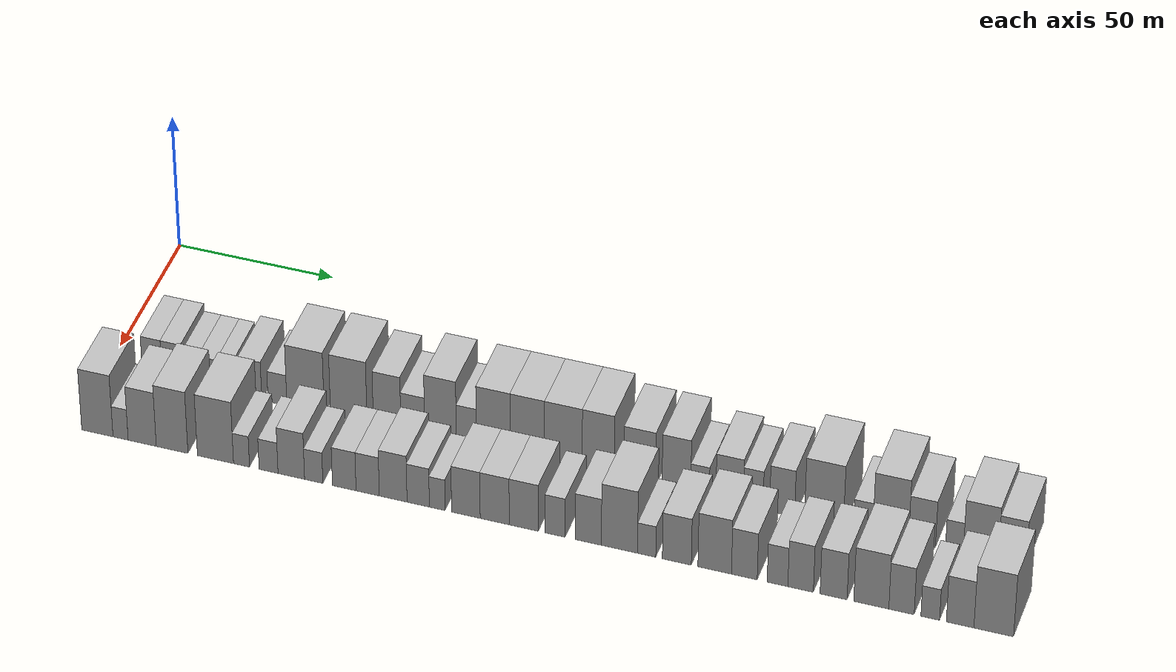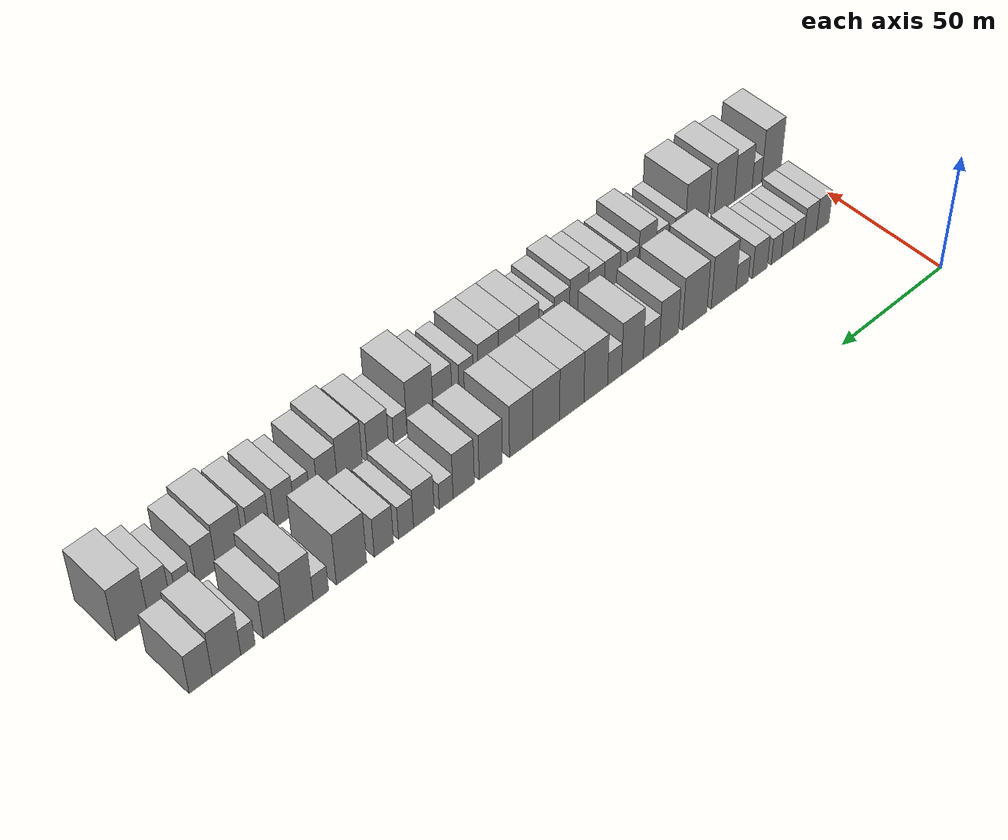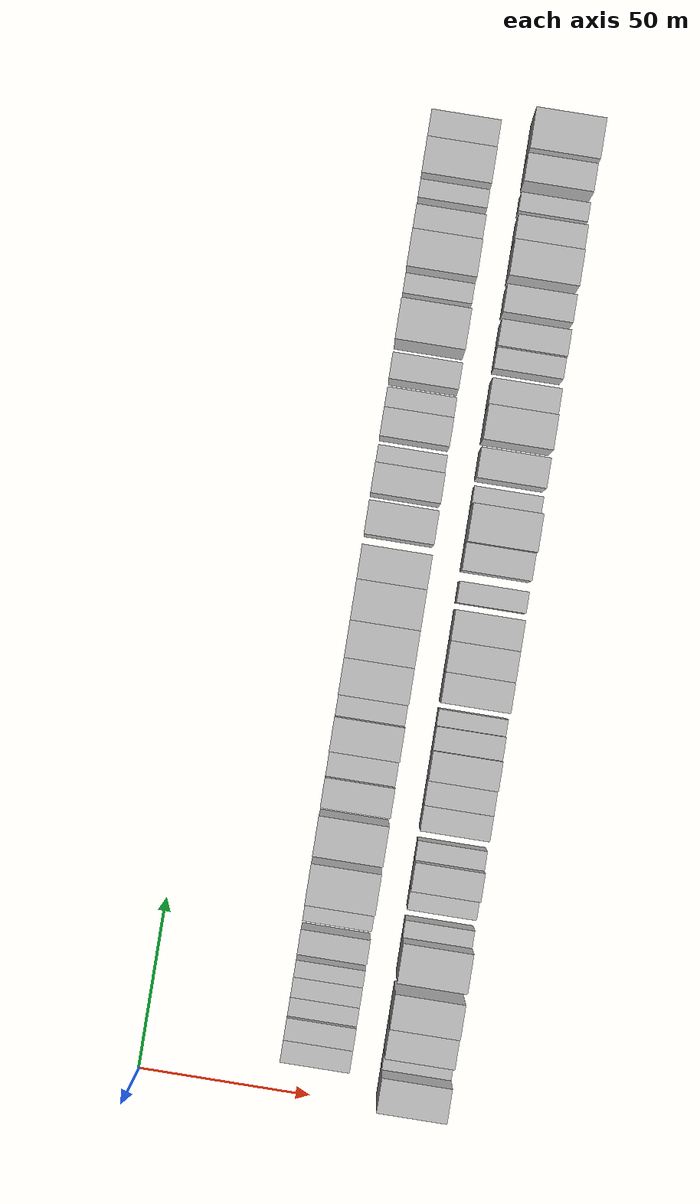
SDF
<sdf version="1.6">
 <world name="default">
  <model name="building_32">
   <static>1</static>
   <pose>50.0000 14.0946 0 0.000000 0.000000 0.000000</pose>
   <link name="link">
    <pose>0 0 7.50 0 0 0</pose>
    <collision name="collision"><geometry><box><size>20.0000 6.3376 15.0000</size></box></geometry></collision>
    <visual name="visual">
     <cast_shadows>0</cast_shadows>
     <geometry><box><size>20.0000 6.3376 15.0000</size></box></geometry>
     <material>
      <script>
       <uri>model://HANNAS_wall/materials/scripts</uri>
       <uri>model://HANNAS_wall/materials/textures</uri>
       <name>vrc/HANNAS_wall</name>
      </script>
     </material>
    </visual>
   </link>
  </model>
  <model name="building_33">
   <static>1</static>
   <pose>50.0000 20.4826 0 0.000000 0.000000 0.000000</pose>
   <link name="link">
    <pose>0 0 7.50 0 0 0</pose>
    <collision name="collision"><geometry><box><size>20.0000 6.4384 15.0000</size></box></geometry></collision>
    <visual name="visual">
     <cast_shadows>0</cast_shadows>
     <geometry><box><size>20.0000 6.4384 15.0000</size></box></geometry>
     <material>
      <script>
       <uri>model://HANNAS_wall/materials/scripts</uri>
       <uri>model://HANNAS_wall/materials/textures</uri>
       <name>vrc/HANNAS_wall</name>
      </script>
     </material>
    </visual>
   </link>
  </model>
  <model name="building_34">
   <static>1</static>
   <pose>50.0000 26.3966 0 0.000000 0.000000 0.000000</pose>
   <link name="link">
    <pose>0 0 6.00 0 0 0</pose>
    <collision name="collision"><geometry><box><size>20.0000 5.3897 12.0000</size></box></geometry></collision>
    <visual name="visual">
     <cast_shadows>0</cast_shadows>
     <geometry><box><size>20.0000 5.3897 12.0000</size></box></geometry>
     <material>
      <script>
       <uri>model://HANNAS_wall/materials/scripts</uri>
       <uri>model://HANNAS_wall/materials/textures</uri>
       <name>vrc/HANNAS_wall</name>
      </script>
     </material>
    </visual>
   </link>
  </model>
  <model name="building_35">
   <static>1</static>
   <pose>50.0000 32.0013 0 0.000000 0.000000 0.000000</pose>
   <link name="link">
    <pose>0 0 6.00 0 0 0</pose>
    <collision name="collision"><geometry><box><size>20.0000 5.8198 12.0000</size></box></geometry></collision>
    <visual name="visual">
     <cast_shadows>0</cast_shadows>
     <geometry><box><size>20.0000 5.8198 12.0000</size></box></geometry>
     <material>
      <script>
       <uri>model://HANNAS_wall/materials/scripts</uri>
       <uri>model://HANNAS_wall/materials/textures</uri>
       <name>vrc/HANNAS_wall</name>
      </script>
     </material>
    </visual>
   </link>
  </model>
  <model name="building_36">
   <static>1</static>
   <pose>50.0000 37.3759 0 0.000000 0.000000 0.000000</pose>
   <link name="link">
    <pose>0 0 6.00 0 0 0</pose>
    <collision name="collision"><geometry><box><size>20.0000 4.9294 12.0000</size></box></geometry></collision>
    <visual name="visual">
     <cast_shadows>0</cast_shadows>
     <geometry><box><size>20.0000 4.9294 12.0000</size></box></geometry>
     <material>
      <script>
       <uri>model://HANNAS_wall/materials/scripts</uri>
       <uri>model://HANNAS_wall/materials/textures</uri>
       <name>vrc/HANNAS_wall</name>
      </script>
     </material>
    </visual>
   </link>
  </model>
  <model name="building_37">
   <static>1</static>
   <pose>50.0000 45.4599 0 0.000000 0.000000 0.000000</pose>
   <link name="link">
    <pose>0 0 7.50 0 0 0</pose>
    <collision name="collision"><geometry><box><size>20.0000 7.2387 15.0000</size></box></geometry></collision>
    <visual name="visual">
     <cast_shadows>0</cast_shadows>
     <geometry><box><size>20.0000 7.2387 15.0000</size></box></geometry>
     <material>
      <script>
       <uri>model://HANNAS_wall/materials/scripts</uri>
       <uri>model://HANNAS_wall/materials/textures</uri>
       <name>vrc/HANNAS_wall</name>
      </script>
     </material>
    </visual>
   </link>
  </model>
  <model name="building_38">
   <static>1</static>
   <pose>50.0000 54.0677 0 0.000000 0.000000 0.000000</pose>
   <link name="link">
    <pose>0 0 6.00 0 0 0</pose>
    <collision name="collision"><geometry><box><size>20.0000 5.9769 12.0000</size></box></geometry></collision>
    <visual name="visual">
     <cast_shadows>0</cast_shadows>
     <geometry><box><size>20.0000 5.9769 12.0000</size></box></geometry>
     <material>
      <script>
       <uri>model://HANNAS_wall/materials/scripts</uri>
       <uri>model://HANNAS_wall/materials/textures</uri>
       <name>vrc/HANNAS_wall</name>
      </script>
     </material>
    </visual>
   </link>
  </model>
  <model name="building_39">
   <static>1</static>
   <pose>50.0000 62.9731 0 0.000000 0.000000 0.000000</pose>
   <link name="link">
    <pose>0 0 12.00 0 0 0</pose>
    <collision name="collision"><geometry><box><size>20.0000 11.8338 24.0000</size></box></geometry></collision>
    <visual name="visual">
     <cast_shadows>0</cast_shadows>
     <geometry><box><size>20.0000 11.8338 24.0000</size></box></geometry>
     <material>
      <script>
       <uri>model://HANNAS_wall/materials/scripts</uri>
       <uri>model://HANNAS_wall/materials/textures</uri>
       <name>vrc/HANNAS_wall</name>
      </script>
     </material>
    </visual>
   </link>
  </model>
  <model name="building_40">
   <static>1</static>
   <pose>50.0000 76.6518 0 0.000000 0.000000 0.000000</pose>
   <link name="link">
    <pose>0 0 12.00 0 0 0</pose>
    <collision name="collision"><geometry><box><size>20.0000 11.5236 24.0000</size></box></geometry></collision>
    <visual name="visual">
     <cast_shadows>0</cast_shadows>
     <geometry><box><size>20.0000 11.5236 24.0000</size></box></geometry>
     <material>
      <script>
       <uri>model://HANNAS_wall/materials/scripts</uri>
       <uri>model://HANNAS_wall/materials/textures</uri>
       <name>vrc/HANNAS_wall</name>
      </script>
     </material>
    </visual>
   </link>
  </model>
  <model name="building_41">
   <static>1</static>
   <pose>50.0000 88.7374 0 0.000000 0.000000 0.000000</pose>
   <link name="link">
    <pose>0 0 10.50 0 0 0</pose>
    <collision name="collision"><geometry><box><size>20.0000 8.6478 21.0000</size></box></geometry></collision>
    <visual name="visual">
     <cast_shadows>0</cast_shadows>
     <geometry><box><size>20.0000 8.6478 21.0000</size></box></geometry>
     <material>
      <script>
       <uri>model://HANNAS_wall/materials/scripts</uri>
       <uri>model://HANNAS_wall/materials/textures</uri>
       <name>vrc/HANNAS_wall</name>
      </script>
     </material>
    </visual>
   </link>
  </model>
  <model name="building_42">
   <static>1</static>
   <pose>50.0000 96.8097 0 0.000000 0.000000 0.000000</pose>
   <link name="link">
    <pose>0 0 7.50 0 0 0</pose>
    <collision name="collision"><geometry><box><size>20.0000 7.4968 15.0000</size></box></geometry></collision>
    <visual name="visual">
     <cast_shadows>0</cast_shadows>
     <geometry><box><size>20.0000 7.4968 15.0000</size></box></geometry>
     <material>
      <script>
       <uri>model://HANNAS_wall/materials/scripts</uri>
       <uri>model://HANNAS_wall/materials/textures</uri>
       <name>vrc/HANNAS_wall</name>
      </script>
     </material>
    </visual>
   </link>
  </model>
  <model name="building_43">
   <static>1</static>
   <pose>50.0000 105.5045 0 0.000000 0.000000 0.000000</pose>
   <link name="link">
    <pose>0 0 12.00 0 0 0</pose>
    <collision name="collision"><geometry><box><size>20.0000 9.8928 24.0000</size></box></geometry></collision>
    <visual name="visual">
     <cast_shadows>0</cast_shadows>
     <geometry><box><size>20.0000 9.8928 24.0000</size></box></geometry>
     <material>
      <script>
       <uri>model://HANNAS_wall/materials/scripts</uri>
       <uri>model://HANNAS_wall/materials/textures</uri>
       <name>vrc/HANNAS_wall</name>
      </script>
     </material>
    </visual>
   </link>
  </model>
  <model name="building_44">
   <static>1</static>
   <pose>50.0000 113.5807 0 0.000000 0.000000 0.000000</pose>
   <link name="link">
    <pose>0 0 7.50 0 0 0</pose>
    <collision name="collision"><geometry><box><size>20.0000 6.2596 15.0000</size></box></geometry></collision>
    <visual name="visual">
     <cast_shadows>0</cast_shadows>
     <geometry><box><size>20.0000 6.2596 15.0000</size></box></geometry>
     <material>
      <script>
       <uri>model://HANNAS_wall/materials/scripts</uri>
       <uri>model://HANNAS_wall/materials/textures</uri>
       <name>vrc/HANNAS_wall</name>
      </script>
     </material>
    </visual>
   </link>
  </model>
  <model name="building_45">
   <static>1</static>
   <pose>50.0000 121.9848 0 0.000000 0.000000 0.000000</pose>
   <link name="link">
    <pose>0 0 12.00 0 0 0</pose>
    <collision name="collision"><geometry><box><size>20.0000 10.5485 24.0000</size></box></geometry></collision>
    <visual name="visual">
     <cast_shadows>0</cast_shadows>
     <geometry><box><size>20.0000 10.5485 24.0000</size></box></geometry>
     <material>
      <script>
       <uri>model://HANNAS_wall/materials/scripts</uri>
       <uri>model://HANNAS_wall/materials/textures</uri>
       <name>vrc/HANNAS_wall</name>
      </script>
     </material>
    </visual>
   </link>
  </model>
  <model name="building_46">
   <static>1</static>
   <pose>50.0000 132.5934 0 0.000000 0.000000 0.000000</pose>
   <link name="link">
    <pose>0 0 12.00 0 0 0</pose>
    <collision name="collision"><geometry><box><size>20.0000 10.6686 24.0000</size></box></geometry></collision>
    <visual name="visual">
     <cast_shadows>0</cast_shadows>
     <geometry><box><size>20.0000 10.6686 24.0000</size></box></geometry>
     <material>
      <script>
       <uri>model://HANNAS_wall/materials/scripts</uri>
       <uri>model://HANNAS_wall/materials/textures</uri>
       <name>vrc/HANNAS_wall</name>
      </script>
     </material>
    </visual>
   </link>
  </model>
  <model name="building_47">
   <static>1</static>
   <pose>50.0000 143.7579 0 0.000000 0.000000 0.000000</pose>
   <link name="link">
    <pose>0 0 12.00 0 0 0</pose>
    <collision name="collision"><geometry><box><size>20.0000 11.6604 24.0000</size></box></geometry></collision>
    <visual name="visual">
     <cast_shadows>0</cast_shadows>
     <geometry><box><size>20.0000 11.6604 24.0000</size></box></geometry>
     <material>
      <script>
       <uri>model://HANNAS_wall/materials/scripts</uri>
       <uri>model://HANNAS_wall/materials/textures</uri>
       <name>vrc/HANNAS_wall</name>
      </script>
     </material>
    </visual>
   </link>
  </model>
  <model name="building_48">
   <static>1</static>
   <pose>50.0000 154.5104 0 0.000000 0.000000 0.000000</pose>
   <link name="link">
    <pose>0 0 12.00 0 0 0</pose>
    <collision name="collision"><geometry><box><size>20.0000 9.8446 24.0000</size></box></geometry></collision>
    <visual name="visual">
     <cast_shadows>0</cast_shadows>
     <geometry><box><size>20.0000 9.8446 24.0000</size></box></geometry>
     <material>
      <script>
       <uri>model://HANNAS_wall/materials/scripts</uri>
       <uri>model://HANNAS_wall/materials/textures</uri>
       <name>vrc/HANNAS_wall</name>
      </script>
     </material>
    </visual>
   </link>
  </model>
  <model name="building_49">
   <static>1</static>
   <pose>50.0000 167.3071 0 0.000000 0.000000 0.000000</pose>
   <link name="link">
    <pose>0 0 10.50 0 0 0</pose>
    <collision name="collision"><geometry><box><size>20.0000 9.7488 21.0000</size></box></geometry></collision>
    <visual name="visual">
     <cast_shadows>0</cast_shadows>
     <geometry><box><size>20.0000 9.7488 21.0000</size></box></geometry>
     <material>
      <script>
       <uri>model://HANNAS_wall/materials/scripts</uri>
       <uri>model://HANNAS_wall/materials/textures</uri>
       <name>vrc/HANNAS_wall</name>
      </script>
     </material>
    </visual>
   </link>
  </model>
  <model name="building_50">
   <static>1</static>
   <pose>50.0000 178.5694 0 0.000000 0.000000 0.000000</pose>
   <link name="link">
    <pose>0 0 10.50 0 0 0</pose>
    <collision name="collision"><geometry><box><size>20.0000 8.7759 21.0000</size></box></geometry></collision>
    <visual name="visual">
     <cast_shadows>0</cast_shadows>
     <geometry><box><size>20.0000 8.7759 21.0000</size></box></geometry>
     <material>
      <script>
       <uri>model://HANNAS_wall/materials/scripts</uri>
       <uri>model://HANNAS_wall/materials/textures</uri>
       <name>vrc/HANNAS_wall</name>
      </script>
     </material>
    </visual>
   </link>
  </model>
  <model name="building_51">
   <static>1</static>
   <pose>50.0000 185.8129 0 0.000000 0.000000 0.000000</pose>
   <link name="link">
    <pose>0 0 6.00 0 0 0</pose>
    <collision name="collision"><geometry><box><size>20.0000 5.7110 12.0000</size></box></geometry></collision>
    <visual name="visual">
     <cast_shadows>0</cast_shadows>
     <geometry><box><size>20.0000 5.7110 12.0000</size></box></geometry>
     <material>
      <script>
       <uri>model://HANNAS_wall/materials/scripts</uri>
       <uri>model://HANNAS_wall/materials/textures</uri>
       <name>vrc/HANNAS_wall</name>
      </script>
     </material>
    </visual>
   </link>
  </model>
  <model name="building_52">
   <static>1</static>
   <pose>50.0000 194.8504 0 0.000000 0.000000 0.000000</pose>
   <link name="link">
    <pose>0 0 9.00 0 0 0</pose>
    <collision name="collision"><geometry><box><size>20.0000 8.3639 18.0000</size></box></geometry></collision>
    <visual name="visual">
     <cast_shadows>0</cast_shadows>
     <geometry><box><size>20.0000 8.3639 18.0000</size></box></geometry>
     <material>
      <script>
       <uri>model://HANNAS_wall/materials/scripts</uri>
       <uri>model://HANNAS_wall/materials/textures</uri>
       <name>vrc/HANNAS_wall</name>
      </script>
     </material>
    </visual>
   </link>
  </model>
  <model name="building_53">
   <static>1</static>
   <pose>50.0000 202.0551 0 0.000000 0.000000 0.000000</pose>
   <link name="link">
    <pose>0 0 7.50 0 0 0</pose>
    <collision name="collision"><geometry><box><size>20.0000 6.0456 15.0000</size></box></geometry></collision>
    <visual name="visual">
     <cast_shadows>0</cast_shadows>
     <geometry><box><size>20.0000 6.0456 15.0000</size></box></geometry>
     <material>
      <script>
       <uri>model://HANNAS_wall/materials/scripts</uri>
       <uri>model://HANNAS_wall/materials/textures</uri>
       <name>vrc/HANNAS_wall</name>
      </script>
     </material>
    </visual>
   </link>
  </model>
  <model name="building_54">
   <static>1</static>
   <pose>50.0000 210.8875 0 0.000000 0.000000 0.000000</pose>
   <link name="link">
    <pose>0 0 9.00 0 0 0</pose>
    <collision name="collision"><geometry><box><size>20.0000 7.6192 18.0000</size></box></geometry></collision>
    <visual name="visual">
     <cast_shadows>0</cast_shadows>
     <geometry><box><size>20.0000 7.6192 18.0000</size></box></geometry>
     <material>
      <script>
       <uri>model://HANNAS_wall/materials/scripts</uri>
       <uri>model://HANNAS_wall/materials/textures</uri>
       <name>vrc/HANNAS_wall</name>
      </script>
     </material>
    </visual>
   </link>
  </model>
  <model name="building_55">
   <static>1</static>
   <pose>50.0000 223.5982 0 0.000000 0.000000 0.000000</pose>
   <link name="link">
    <pose>0 0 12.00 0 0 0</pose>
    <collision name="collision"><geometry><box><size>20.0000 11.8020 24.0000</size></box></geometry></collision>
    <visual name="visual">
     <cast_shadows>0</cast_shadows>
     <geometry><box><size>20.0000 11.8020 24.0000</size></box></geometry>
     <material>
      <script>
       <uri>model://HANNAS_wall/materials/scripts</uri>
       <uri>model://HANNAS_wall/materials/textures</uri>
       <name>vrc/HANNAS_wall</name>
      </script>
     </material>
    </visual>
   </link>
  </model>
  <model name="building_56">
   <static>1</static>
   <pose>50.0000 235.4313 0 0.000000 0.000000 0.000000</pose>
   <link name="link">
    <pose>0 0 6.00 0 0 0</pose>
    <collision name="collision"><geometry><box><size>20.0000 5.8642 12.0000</size></box></geometry></collision>
    <visual name="visual">
     <cast_shadows>0</cast_shadows>
     <geometry><box><size>20.0000 5.8642 12.0000</size></box></geometry>
     <material>
      <script>
       <uri>model://HANNAS_wall/materials/scripts</uri>
       <uri>model://HANNAS_wall/materials/textures</uri>
       <name>vrc/HANNAS_wall</name>
      </script>
     </material>
    </visual>
   </link>
  </model>
  <model name="building_57">
   <static>1</static>
   <pose>50.0000 243.7569 0 0.000000 0.000000 0.000000</pose>
   <link name="link">
    <pose>0 0 12.00 0 0 0</pose>
    <collision name="collision"><geometry><box><size>20.0000 10.7869 24.0000</size></box></geometry></collision>
    <visual name="visual">
     <cast_shadows>0</cast_shadows>
     <geometry><box><size>20.0000 10.7869 24.0000</size></box></geometry>
     <material>
      <script>
       <uri>model://HANNAS_wall/materials/scripts</uri>
       <uri>model://HANNAS_wall/materials/textures</uri>
       <name>vrc/HANNAS_wall</name>
      </script>
     </material>
    </visual>
   </link>
  </model>
  <model name="building_58">
   <static>1</static>
   <pose>50.0000 253.1843 0 0.000000 0.000000 0.000000</pose>
   <link name="link">
    <pose>0 0 9.00 0 0 0</pose>
    <collision name="collision"><geometry><box><size>20.0000 8.0679 18.0000</size></box></geometry></collision>
    <visual name="visual">
     <cast_shadows>0</cast_shadows>
     <geometry><box><size>20.0000 8.0679 18.0000</size></box></geometry>
     <material>
      <script>
       <uri>model://HANNAS_wall/materials/scripts</uri>
       <uri>model://HANNAS_wall/materials/textures</uri>
       <name>vrc/HANNAS_wall</name>
      </script>
     </material>
    </visual>
   </link>
  </model>
  <model name="building_59">
   <static>1</static>
   <pose>50.0000 262.8933 0 0.000000 0.000000 0.000000</pose>
   <link name="link">
    <pose>0 0 6.00 0 0 0</pose>
    <collision name="collision"><geometry><box><size>20.0000 5.3500 12.0000</size></box></geometry></collision>
    <visual name="visual">
     <cast_shadows>0</cast_shadows>
     <geometry><box><size>20.0000 5.3500 12.0000</size></box></geometry>
     <material>
      <script>
       <uri>model://HANNAS_wall/materials/scripts</uri>
       <uri>model://HANNAS_wall/materials/textures</uri>
       <name>vrc/HANNAS_wall</name>
      </script>
     </material>
    </visual>
   </link>
  </model>
  <model name="building_60">
   <static>1</static>
   <pose>50.0000 270.7941 0 0.000000 0.000000 0.000000</pose>
   <link name="link">
    <pose>0 0 10.50 0 0 0</pose>
    <collision name="collision"><geometry><box><size>20.0000 10.4516 21.0000</size></box></geometry></collision>
    <visual name="visual">
     <cast_shadows>0</cast_shadows>
     <geometry><box><size>20.0000 10.4516 21.0000</size></box></geometry>
     <material>
      <script>
       <uri>model://HANNAS_wall/materials/scripts</uri>
       <uri>model://HANNAS_wall/materials/textures</uri>
       <name>vrc/HANNAS_wall</name>
      </script>
     </material>
    </visual>
   </link>
  </model>
  <model name="building_61">
   <static>1</static>
   <pose>50.0000 280.1998 0 0.000000 0.000000 0.000000</pose>
   <link name="link">
    <pose>0 0 9.00 0 0 0</pose>
    <collision name="collision"><geometry><box><size>20.0000 8.3598 18.0000</size></box></geometry></collision>
    <visual name="visual">
     <cast_shadows>0</cast_shadows>
     <geometry><box><size>20.0000 8.3598 18.0000</size></box></geometry>
     <material>
      <script>
       <uri>model://HANNAS_wall/materials/scripts</uri>
       <uri>model://HANNAS_wall/materials/textures</uri>
       <name>vrc/HANNAS_wall</name>
      </script>
     </material>
    </visual>
   </link>
  </model>
  <model name="building_93">
   <static>1</static>
   <pose>79.0000 7.8602 0 0.000000 0.000000 0.000000</pose>
   <link name="link">
    <pose>0 0 12.00 0 0 0</pose>
    <collision name="collision"><geometry><box><size>20.0000 9.9301 24.0000</size></box></geometry></collision>
    <visual name="visual">
     <cast_shadows>0</cast_shadows>
     <geometry><box><size>20.0000 9.9301 24.0000</size></box></geometry>
     <material>
      <script>
       <uri>model://HANNAS_wall/materials/scripts</uri>
       <uri>model://HANNAS_wall/materials/textures</uri>
       <name>vrc/HANNAS_wall</name>
      </script>
     </material>
    </visual>
   </link>
  </model>
  <model name="building_94">
   <static>1</static>
   <pose>79.0000 15.2295 0 0.000000 0.000000 0.000000</pose>
   <link name="link">
    <pose>0 0 6.00 0 0 0</pose>
    <collision name="collision"><geometry><box><size>20.0000 4.8085 12.0000</size></box></geometry></collision>
    <visual name="visual">
     <cast_shadows>0</cast_shadows>
     <geometry><box><size>20.0000 4.8085 12.0000</size></box></geometry>
     <material>
      <script>
       <uri>model://HANNAS_wall/materials/scripts</uri>
       <uri>model://HANNAS_wall/materials/textures</uri>
       <name>vrc/HANNAS_wall</name>
      </script>
     </material>
    </visual>
   </link>
  </model>
  <model name="building_95">
   <static>1</static>
   <pose>79.0000 22.0915 0 0.000000 0.000000 0.000000</pose>
   <link name="link">
    <pose>0 0 10.50 0 0 0</pose>
    <collision name="collision"><geometry><box><size>20.0000 8.9153 21.0000</size></box></geometry></collision>
    <visual name="visual">
     <cast_shadows>0</cast_shadows>
     <geometry><box><size>20.0000 8.9153 21.0000</size></box></geometry>
     <material>
      <script>
       <uri>model://HANNAS_wall/materials/scripts</uri>
       <uri>model://HANNAS_wall/materials/textures</uri>
       <name>vrc/HANNAS_wall</name>
      </script>
     </material>
    </visual>
   </link>
  </model>
  <model name="building_96">
   <static>1</static>
   <pose>79.0000 31.5507 0 0.000000 0.000000 0.000000</pose>
   <link name="link">
    <pose>0 0 12.00 0 0 0</pose>
    <collision name="collision"><geometry><box><size>20.0000 10.0031 24.0000</size></box></geometry></collision>
    <visual name="visual">
     <cast_shadows>0</cast_shadows>
     <geometry><box><size>20.0000 10.0031 24.0000</size></box></geometry>
     <material>
      <script>
       <uri>model://HANNAS_wall/materials/scripts</uri>
       <uri>model://HANNAS_wall/materials/textures</uri>
       <name>vrc/HANNAS_wall</name>
      </script>
     </material>
    </visual>
   </link>
  </model>
  <model name="building_97">
   <static>1</static>
   <pose>79.0000 45.2328 0 0.000000 0.000000 0.000000</pose>
   <link name="link">
    <pose>0 0 12.00 0 0 0</pose>
    <collision name="collision"><geometry><box><size>20.0000 11.3610 24.0000</size></box></geometry></collision>
    <visual name="visual">
     <cast_shadows>0</cast_shadows>
     <geometry><box><size>20.0000 11.3610 24.0000</size></box></geometry>
     <material>
      <script>
       <uri>model://HANNAS_wall/materials/scripts</uri>
       <uri>model://HANNAS_wall/materials/textures</uri>
       <name>vrc/HANNAS_wall</name>
      </script>
     </material>
    </visual>
   </link>
  </model>
  <model name="building_98">
   <static>1</static>
   <pose>79.0000 53.4311 0 0.000000 0.000000 0.000000</pose>
   <link name="link">
    <pose>0 0 6.00 0 0 0</pose>
    <collision name="collision"><geometry><box><size>20.0000 5.0357 12.0000</size></box></geometry></collision>
    <visual name="visual">
     <cast_shadows>0</cast_shadows>
     <geometry><box><size>20.0000 5.0357 12.0000</size></box></geometry>
     <material>
      <script>
       <uri>model://HANNAS_wall/materials/scripts</uri>
       <uri>model://HANNAS_wall/materials/textures</uri>
       <name>vrc/HANNAS_wall</name>
      </script>
     </material>
    </visual>
   </link>
  </model>
  <model name="building_99">
   <static>1</static>
   <pose>79.0000 61.9198 0 0.000000 0.000000 0.000000</pose>
   <link name="link">
    <pose>0 0 6.00 0 0 0</pose>
    <collision name="collision"><geometry><box><size>20.0000 5.9418 12.0000</size></box></geometry></collision>
    <visual name="visual">
     <cast_shadows>0</cast_shadows>
     <geometry><box><size>20.0000 5.9418 12.0000</size></box></geometry>
     <material>
      <script>
       <uri>model://HANNAS_wall/materials/scripts</uri>
       <uri>model://HANNAS_wall/materials/textures</uri>
       <name>vrc/HANNAS_wall</name>
      </script>
     </material>
    </visual>
   </link>
  </model>
  <model name="building_100">
   <static>1</static>
   <pose>79.0000 69.0466 0 0.000000 0.000000 0.000000</pose>
   <link name="link">
    <pose>0 0 9.00 0 0 0</pose>
    <collision name="collision"><geometry><box><size>20.0000 8.3119 18.0000</size></box></geometry></collision>
    <visual name="visual">
     <cast_shadows>0</cast_shadows>
     <geometry><box><size>20.0000 8.3119 18.0000</size></box></geometry>
     <material>
      <script>
       <uri>model://HANNAS_wall/materials/scripts</uri>
       <uri>model://HANNAS_wall/materials/textures</uri>
       <name>vrc/HANNAS_wall</name>
      </script>
     </material>
    </visual>
   </link>
  </model>
  <model name="building_101">
   <static>1</static>
   <pose>79.0000 76.0504 0 0.000000 0.000000 0.000000</pose>
   <link name="link">
    <pose>0 0 6.00 0 0 0</pose>
    <collision name="collision"><geometry><box><size>20.0000 5.6956 12.0000</size></box></geometry></collision>
    <visual name="visual">
     <cast_shadows>0</cast_shadows>
     <geometry><box><size>20.0000 5.6956 12.0000</size></box></geometry>
     <material>
      <script>
       <uri>model://HANNAS_wall/materials/scripts</uri>
       <uri>model://HANNAS_wall/materials/textures</uri>
       <name>vrc/HANNAS_wall</name>
      </script>
     </material>
    </visual>
   </link>
  </model>
  <model name="building_102">
   <static>1</static>
   <pose>79.0000 85.5739 0 0.000000 0.000000 0.000000</pose>
   <link name="link">
    <pose>0 0 7.50 0 0 0</pose>
    <collision name="collision"><geometry><box><size>20.0000 7.3515 15.0000</size></box></geometry></collision>
    <visual name="visual">
     <cast_shadows>0</cast_shadows>
     <geometry><box><size>20.0000 7.3515 15.0000</size></box></geometry>
     <material>
      <script>
       <uri>model://HANNAS_wall/materials/scripts</uri>
       <uri>model://HANNAS_wall/materials/textures</uri>
       <name>vrc/HANNAS_wall</name>
      </script>
     </material>
    </visual>
   </link>
  </model>
  <model name="building_103">
   <static>1</static>
   <pose>79.0000 92.8683 0 0.000000 0.000000 0.000000</pose>
   <link name="link">
    <pose>0 0 7.50 0 0 0</pose>
    <collision name="collision"><geometry><box><size>20.0000 7.2372 15.0000</size></box></geometry></collision>
    <visual name="visual">
     <cast_shadows>0</cast_shadows>
     <geometry><box><size>20.0000 7.2372 15.0000</size></box></geometry>
     <material>
      <script>
       <uri>model://HANNAS_wall/materials/scripts</uri>
       <uri>model://HANNAS_wall/materials/textures</uri>
       <name>vrc/HANNAS_wall</name>
      </script>
     </material>
    </visual>
   </link>
  </model>
  <model name="building_104">
   <static>1</static>
   <pose>79.0000 100.7884 0 0.000000 0.000000 0.000000</pose>
   <link name="link">
    <pose>0 0 9.00 0 0 0</pose>
    <collision name="collision"><geometry><box><size>20.0000 8.6030 18.0000</size></box></geometry></collision>
    <visual name="visual">
     <cast_shadows>0</cast_shadows>
     <geometry><box><size>20.0000 8.6030 18.0000</size></box></geometry>
     <material>
      <script>
       <uri>model://HANNAS_wall/materials/scripts</uri>
       <uri>model://HANNAS_wall/materials/textures</uri>
       <name>vrc/HANNAS_wall</name>
      </script>
     </material>
    </visual>
   </link>
  </model>
  <model name="building_105">
   <static>1</static>
   <pose>79.0000 108.5436 0 0.000000 0.000000 0.000000</pose>
   <link name="link">
    <pose>0 0 7.50 0 0 0</pose>
    <collision name="collision"><geometry><box><size>20.0000 6.9075 15.0000</size></box></geometry></collision>
    <visual name="visual">
     <cast_shadows>0</cast_shadows>
     <geometry><box><size>20.0000 6.9075 15.0000</size></box></geometry>
     <material>
      <script>
       <uri>model://HANNAS_wall/materials/scripts</uri>
       <uri>model://HANNAS_wall/materials/textures</uri>
       <name>vrc/HANNAS_wall</name>
      </script>
     </material>
    </visual>
   </link>
  </model>
  <model name="building_106">
   <static>1</static>
   <pose>79.0000 114.4298 0 0.000000 0.000000 0.000000</pose>
   <link name="link">
    <pose>0 0 6.00 0 0 0</pose>
    <collision name="collision"><geometry><box><size>20.0000 4.8649 12.0000</size></box></geometry></collision>
    <visual name="visual">
     <cast_shadows>0</cast_shadows>
     <geometry><box><size>20.0000 4.8649 12.0000</size></box></geometry>
     <material>
      <script>
       <uri>model://HANNAS_wall/materials/scripts</uri>
       <uri>model://HANNAS_wall/materials/textures</uri>
       <name>vrc/HANNAS_wall</name>
      </script>
     </material>
    </visual>
   </link>
  </model>
  <model name="building_107">
   <static>1</static>
   <pose>79.0000 123.2704 0 0.000000 0.000000 0.000000</pose>
   <link name="link">
    <pose>0 0 9.00 0 0 0</pose>
    <collision name="collision"><geometry><box><size>20.0000 8.8164 18.0000</size></box></geometry></collision>
    <visual name="visual">
     <cast_shadows>0</cast_shadows>
     <geometry><box><size>20.0000 8.8164 18.0000</size></box></geometry>
     <material>
      <script>
       <uri>model://HANNAS_wall/materials/scripts</uri>
       <uri>model://HANNAS_wall/materials/textures</uri>
       <name>vrc/HANNAS_wall</name>
      </script>
     </material>
    </visual>
   </link>
  </model>
  <model name="building_108">
   <static>1</static>
   <pose>79.0000 132.1520 0 0.000000 0.000000 0.000000</pose>
   <link name="link">
    <pose>0 0 9.00 0 0 0</pose>
    <collision name="collision"><geometry><box><size>20.0000 8.9468 18.0000</size></box></geometry></collision>
    <visual name="visual">
     <cast_shadows>0</cast_shadows>
     <geometry><box><size>20.0000 8.9468 18.0000</size></box></geometry>
     <material>
      <script>
       <uri>model://HANNAS_wall/materials/scripts</uri>
       <uri>model://HANNAS_wall/materials/textures</uri>
       <name>vrc/HANNAS_wall</name>
      </script>
     </material>
    </visual>
   </link>
  </model>
  <model name="building_109">
   <static>1</static>
   <pose>79.0000 141.0815 0 0.000000 0.000000 0.000000</pose>
   <link name="link">
    <pose>0 0 9.00 0 0 0</pose>
    <collision name="collision"><geometry><box><size>20.0000 8.9121 18.0000</size></box></geometry></collision>
    <visual name="visual">
     <cast_shadows>0</cast_shadows>
     <geometry><box><size>20.0000 8.9121 18.0000</size></box></geometry>
     <material>
      <script>
       <uri>model://HANNAS_wall/materials/scripts</uri>
       <uri>model://HANNAS_wall/materials/textures</uri>
       <name>vrc/HANNAS_wall</name>
      </script>
     </material>
    </visual>
   </link>
  </model>
  <model name="building_110">
   <static>1</static>
   <pose>79.0000 150.6457 0 0.000000 0.000000 0.000000</pose>
   <link name="link">
    <pose>0 0 7.50 0 0 0</pose>
    <collision name="collision"><geometry><box><size>20.0000 6.2163 15.0000</size></box></geometry></collision>
    <visual name="visual">
     <cast_shadows>0</cast_shadows>
     <geometry><box><size>20.0000 6.2163 15.0000</size></box></geometry>
     <material>
      <script>
       <uri>model://HANNAS_wall/materials/scripts</uri>
       <uri>model://HANNAS_wall/materials/textures</uri>
       <name>vrc/HANNAS_wall</name>
      </script>
     </material>
    </visual>
   </link>
  </model>
  <model name="building_111">
   <static>1</static>
   <pose>79.0000 160.7812 0 0.000000 0.000000 0.000000</pose>
   <link name="link">
    <pose>0 0 9.00 0 0 0</pose>
    <collision name="collision"><geometry><box><size>20.0000 8.0548 18.0000</size></box></geometry></collision>
    <visual name="visual">
     <cast_shadows>0</cast_shadows>
     <geometry><box><size>20.0000 8.0548 18.0000</size></box></geometry>
     <material>
      <script>
       <uri>model://HANNAS_wall/materials/scripts</uri>
       <uri>model://HANNAS_wall/materials/textures</uri>
       <name>vrc/HANNAS_wall</name>
      </script>
     </material>
    </visual>
   </link>
  </model>
  <model name="building_112">
   <static>1</static>
   <pose>79.0000 170.2984 0 0.000000 0.000000 0.000000</pose>
   <link name="link">
    <pose>0 0 12.00 0 0 0</pose>
    <collision name="collision"><geometry><box><size>20.0000 10.9796 24.0000</size></box></geometry></collision>
    <visual name="visual">
     <cast_shadows>0</cast_shadows>
     <geometry><box><size>20.0000 10.9796 24.0000</size></box></geometry>
     <material>
      <script>
       <uri>model://HANNAS_wall/materials/scripts</uri>
       <uri>model://HANNAS_wall/materials/textures</uri>
       <name>vrc/HANNAS_wall</name>
      </script>
     </material>
    </visual>
   </link>
  </model>
  <model name="building_113">
   <static>1</static>
   <pose>79.0000 178.5572 0 0.000000 0.000000 0.000000</pose>
   <link name="link">
    <pose>0 0 6.00 0 0 0</pose>
    <collision name="collision"><geometry><box><size>20.0000 5.5380 12.0000</size></box></geometry></collision>
    <visual name="visual">
     <cast_shadows>0</cast_shadows>
     <geometry><box><size>20.0000 5.5380 12.0000</size></box></geometry>
     <material>
      <script>
       <uri>model://HANNAS_wall/materials/scripts</uri>
       <uri>model://HANNAS_wall/materials/textures</uri>
       <name>vrc/HANNAS_wall</name>
      </script>
     </material>
    </visual>
   </link>
  </model>
  <model name="building_114">
   <static>1</static>
   <pose>79.0000 187.7063 0 0.000000 0.000000 0.000000</pose>
   <link name="link">
    <pose>0 0 9.00 0 0 0</pose>
    <collision name="collision"><geometry><box><size>20.0000 8.7600 18.0000</size></box></geometry></collision>
    <visual name="visual">
     <cast_shadows>0</cast_shadows>
     <geometry><box><size>20.0000 8.7600 18.0000</size></box></geometry>
     <material>
      <script>
       <uri>model://HANNAS_wall/materials/scripts</uri>
       <uri>model://HANNAS_wall/materials/textures</uri>
       <name>vrc/HANNAS_wall</name>
      </script>
     </material>
    </visual>
   </link>
  </model>
  <model name="building_115">
   <static>1</static>
   <pose>79.0000 199.1446 0 0.000000 0.000000 0.000000</pose>
   <link name="link">
    <pose>0 0 10.50 0 0 0</pose>
    <collision name="collision"><geometry><box><size>20.0000 10.1165 21.0000</size></box></geometry></collision>
    <visual name="visual">
     <cast_shadows>0</cast_shadows>
     <geometry><box><size>20.0000 10.1165 21.0000</size></box></geometry>
     <material>
      <script>
       <uri>model://HANNAS_wall/materials/scripts</uri>
       <uri>model://HANNAS_wall/materials/textures</uri>
       <name>vrc/HANNAS_wall</name>
      </script>
     </material>
    </visual>
   </link>
  </model>
  <model name="building_116">
   <static>1</static>
   <pose>79.0000 208.0820 0 0.000000 0.000000 0.000000</pose>
   <link name="link">
    <pose>0 0 9.00 0 0 0</pose>
    <collision name="collision"><geometry><box><size>20.0000 7.7583 18.0000</size></box></geometry></collision>
    <visual name="visual">
     <cast_shadows>0</cast_shadows>
     <geometry><box><size>20.0000 7.7583 18.0000</size></box></geometry>
     <material>
      <script>
       <uri>model://HANNAS_wall/materials/scripts</uri>
       <uri>model://HANNAS_wall/materials/textures</uri>
       <name>vrc/HANNAS_wall</name>
      </script>
     </material>
    </visual>
   </link>
  </model>
  <model name="building_117">
   <static>1</static>
   <pose>79.0000 218.0607 0 0.000000 0.000000 0.000000</pose>
   <link name="link">
    <pose>0 0 7.50 0 0 0</pose>
    <collision name="collision"><geometry><box><size>20.0000 6.1991 15.0000</size></box></geometry></collision>
    <visual name="visual">
     <cast_shadows>0</cast_shadows>
     <geometry><box><size>20.0000 6.1991 15.0000</size></box></geometry>
     <material>
      <script>
       <uri>model://HANNAS_wall/materials/scripts</uri>
       <uri>model://HANNAS_wall/materials/textures</uri>
       <name>vrc/HANNAS_wall</name>
      </script>
     </material>
    </visual>
   </link>
  </model>
  <model name="building_118">
   <static>1</static>
   <pose>79.0000 224.9850 0 0.000000 0.000000 0.000000</pose>
   <link name="link">
    <pose>0 0 9.00 0 0 0</pose>
    <collision name="collision"><geometry><box><size>20.0000 7.6495 18.0000</size></box></geometry></collision>
    <visual name="visual">
     <cast_shadows>0</cast_shadows>
     <geometry><box><size>20.0000 7.6495 18.0000</size></box></geometry>
     <material>
      <script>
       <uri>model://HANNAS_wall/materials/scripts</uri>
       <uri>model://HANNAS_wall/materials/textures</uri>
       <name>vrc/HANNAS_wall</name>
      </script>
     </material>
    </visual>
   </link>
  </model>
  <model name="building_119">
   <static>1</static>
   <pose>79.0000 234.8461 0 0.000000 0.000000 0.000000</pose>
   <link name="link">
    <pose>0 0 9.00 0 0 0</pose>
    <collision name="collision"><geometry><box><size>20.0000 8.0726 18.0000</size></box></geometry></collision>
    <visual name="visual">
     <cast_shadows>0</cast_shadows>
     <geometry><box><size>20.0000 8.0726 18.0000</size></box></geometry>
     <material>
      <script>
       <uri>model://HANNAS_wall/materials/scripts</uri>
       <uri>model://HANNAS_wall/materials/textures</uri>
       <name>vrc/HANNAS_wall</name>
      </script>
     </material>
    </visual>
   </link>
  </model>
  <model name="building_120">
   <static>1</static>
   <pose>79.0000 246.1042 0 0.000000 0.000000 0.000000</pose>
   <link name="link">
    <pose>0 0 10.50 0 0 0</pose>
    <collision name="collision"><geometry><box><size>20.0000 10.4437 21.0000</size></box></geometry></collision>
    <visual name="visual">
     <cast_shadows>0</cast_shadows>
     <geometry><box><size>20.0000 10.4437 21.0000</size></box></geometry>
     <material>
      <script>
       <uri>model://HANNAS_wall/materials/scripts</uri>
       <uri>model://HANNAS_wall/materials/textures</uri>
       <name>vrc/HANNAS_wall</name>
      </script>
     </material>
    </visual>
   </link>
  </model>
  <model name="building_121">
   <static>1</static>
   <pose>79.0000 255.0899 0 0.000000 0.000000 0.000000</pose>
   <link name="link">
    <pose>0 0 9.00 0 0 0</pose>
    <collision name="collision"><geometry><box><size>20.0000 7.5277 18.0000</size></box></geometry></collision>
    <visual name="visual">
     <cast_shadows>0</cast_shadows>
     <geometry><box><size>20.0000 7.5277 18.0000</size></box></geometry>
     <material>
      <script>
       <uri>model://HANNAS_wall/materials/scripts</uri>
       <uri>model://HANNAS_wall/materials/textures</uri>
       <name>vrc/HANNAS_wall</name>
      </script>
     </material>
    </visual>
   </link>
  </model>
  <model name="building_122">
   <static>1</static>
   <pose>79.0000 263.6205 0 0.000000 0.000000 0.000000</pose>
   <link name="link">
    <pose>0 0 6.00 0 0 0</pose>
    <collision name="collision"><geometry><box><size>20.0000 5.5334 12.0000</size></box></geometry></collision>
    <visual name="visual">
     <cast_shadows>0</cast_shadows>
     <geometry><box><size>20.0000 5.5334 12.0000</size></box></geometry>
     <material>
      <script>
       <uri>model://HANNAS_wall/materials/scripts</uri>
       <uri>model://HANNAS_wall/materials/textures</uri>
       <name>vrc/HANNAS_wall</name>
      </script>
     </material>
    </visual>
   </link>
  </model>
  <model name="building_123">
   <static>1</static>
   <pose>79.0000 272.4589 0 0.000000 0.000000 0.000000</pose>
   <link name="link">
    <pose>0 0 9.00 0 0 0</pose>
    <collision name="collision"><geometry><box><size>20.0000 8.1433 18.0000</size></box></geometry></collision>
    <visual name="visual">
     <cast_shadows>0</cast_shadows>
     <geometry><box><size>20.0000 8.1433 18.0000</size></box></geometry>
     <material>
      <script>
       <uri>model://HANNAS_wall/materials/scripts</uri>
       <uri>model://HANNAS_wall/materials/textures</uri>
       <name>vrc/HANNAS_wall</name>
      </script>
     </material>
    </visual>
   </link>
  </model>
  <model name="building_124">
   <static>1</static>
   <pose>79.0000 282.3828 0 0.000000 0.000000 0.000000</pose>
   <link name="link">
    <pose>0 0 12.00 0 0 0</pose>
    <collision name="collision"><geometry><box><size>20.0000 11.7046 24.0000</size></box></geometry></collision>
    <visual name="visual">
     <cast_shadows>0</cast_shadows>
     <geometry><box><size>20.0000 11.7046 24.0000</size></box></geometry>
     <material>
      <script>
       <uri>model://HANNAS_wall/materials/scripts</uri>
       <uri>model://HANNAS_wall/materials/textures</uri>
       <name>vrc/HANNAS_wall</name>
      </script>
     </material>
    </visual>
   </link>
  </model>
 </world>
</sdf>
